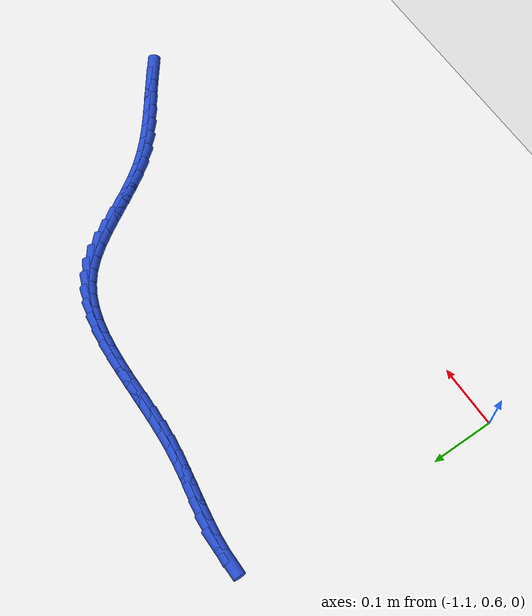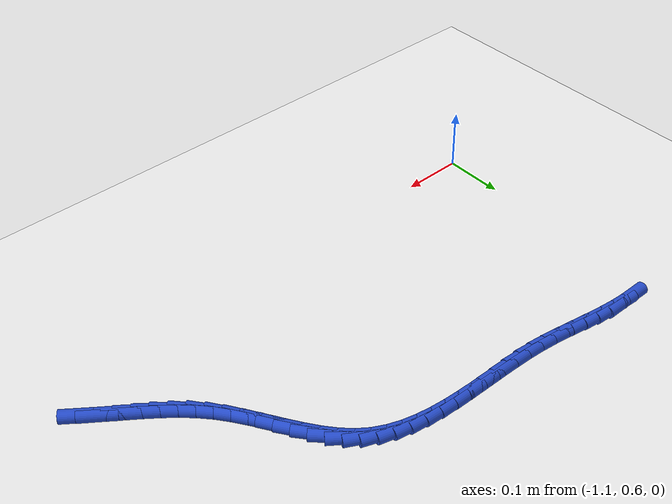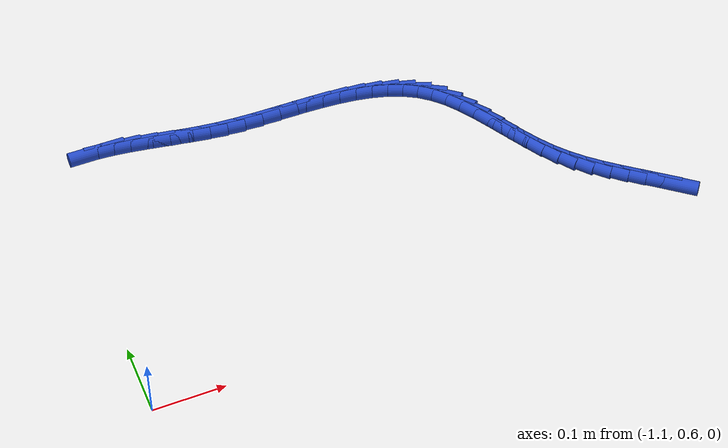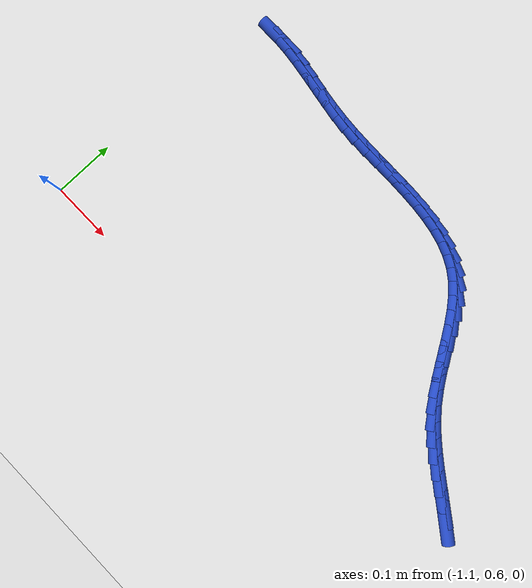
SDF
<sdf version="1.6">
 <world name="default">
  <model name="ground_plane">
   <static>1</static>
   <link name="link">
    <collision name="collision">
     <geometry><plane><normal>0 0 1</normal><size>100 100</size></plane></geometry>
     <surface><friction><ode><mu>100</mu><mu2>50</mu2></ode></friction></surface>
    </collision>
    <visual name="visual">
     <cast_shadows>0</cast_shadows>
     <geometry><plane><normal>0 0 1</normal><size>100 100</size></plane></geometry>
     <material>
      <script><uri>file://media/materials/scripts/gazebo.material</uri><name>Gazebo/WhiteGlow</name></script>
     </material>
    </visual>
   </link>
  </model>
  <model name="line">
   <link name="link_33">
    <pose>-0.33373359396966285 0.6815802135897588 0.01 0 1.57 -0.6499025332240669</pose>
    <collision name="collision">
     <geometry><cylinder><radius>0.01</radius><length>0.08</length></cylinder></geometry>
    </collision>
    <visual name="visual">
     <material>
      <script><name>Gazebo/Blue</name><uri>file://media/materials/scripts/gazebo.material</uri></script>
     </material>
     <geometry><cylinder><radius>0.01</radius><length>0.08</length></cylinder></geometry>
    </visual>
   </link>
   <link name="link_34">
    <pose>-0.352499605631969 0.6958433323258728 0.01 0 1.57 -0.6362783941563067</pose>
    <collision name="collision">
     <geometry><cylinder><radius>0.01</radius><length>0.08</length></cylinder></geometry>
    </collision>
    <visual name="visual">
     <material>
      <script><name>Gazebo/Blue</name><uri>file://media/materials/scripts/gazebo.material</uri></script>
     </material>
     <geometry><cylinder><radius>0.01</radius><length>0.08</length></cylinder></geometry>
    </visual>
   </link>
   <link name="link_35">
    <pose>-0.37156623640894804 0.709929284742732 0.01 0 1.57 -0.6409452636583325</pose>
    <collision name="collision">
     <geometry><cylinder><radius>0.01</radius><length>0.08</length></cylinder></geometry>
    </collision>
    <visual name="visual">
     <material>
      <script><name>Gazebo/Blue</name><uri>file://media/materials/scripts/gazebo.material</uri></script>
     </material>
     <geometry><cylinder><radius>0.01</radius><length>0.08</length></cylinder></geometry>
    </visual>
   </link>
   <link name="link_36">
    <pose>-0.39063209073391125 0.7241526813506937 0.01 0 1.57 -0.6637430228627839</pose>
    <collision name="collision">
     <geometry><cylinder><radius>0.01</radius><length>0.08</length></cylinder></geometry>
    </collision>
    <visual name="visual">
     <material>
      <script><name>Gazebo/Blue</name><uri>file://media/materials/scripts/gazebo.material</uri></script>
     </material>
     <geometry><cylinder><radius>0.01</radius><length>0.08</length></cylinder></geometry>
    </visual>
   </link>
   <link name="link_37">
    <pose>-0.409395773040171 0.7388281326601155 0.01 0 1.57 -0.7046864514127695</pose>
    <collision name="collision">
     <geometry><cylinder><radius>0.01</radius><length>0.08</length></cylinder></geometry>
    </collision>
    <visual name="visual">
     <material>
      <script><name>Gazebo/Blue</name><uri>file://media/materials/scripts/gazebo.material</uri></script>
     </material>
     <geometry><cylinder><radius>0.01</radius><length>0.08</length></cylinder></geometry>
    </visual>
   </link>
   <link name="link_38">
    <pose>-0.42755588776103853 0.7542702491813543 0.01 0 1.57 -0.7637381152608196</pose>
    <collision name="collision">
     <geometry><cylinder><radius>0.01</radius><length>0.08</length></cylinder></geometry>
    </collision>
    <visual name="visual">
     <material>
      <script><name>Gazebo/Blue</name><uri>file://media/materials/scripts/gazebo.material</uri></script>
     </material>
     <geometry><cylinder><radius>0.01</radius><length>0.08</length></cylinder></geometry>
    </visual>
   </link>
   <link name="link_39">
    <pose>-0.4448110393298259 0.7707936414247677 0.01 0 1.57 -0.8403531457350524</pose>
    <collision name="collision">
     <geometry><cylinder><radius>0.01</radius><length>0.08</length></cylinder></geometry>
    </collision>
    <visual name="visual">
     <material>
      <script><name>Gazebo/Blue</name><uri>file://media/materials/scripts/gazebo.material</uri></script>
     </material>
     <geometry><cylinder><radius>0.01</radius><length>0.08</length></cylinder></geometry>
    </visual>
   </link>
   <link name="link_40">
    <pose>-0.4608606806496912 0.788711867764181 0.01 0 1.57 -0.9210708584065361</pose>
    <collision name="collision">
     <geometry><cylinder><radius>0.01</radius><length>0.08</length></cylinder></geometry>
    </collision>
    <visual name="visual">
     <material>
      <script><name>Gazebo/Blue</name><uri>file://media/materials/scripts/gazebo.material</uri></script>
     </material>
     <geometry><cylinder><radius>0.01</radius><length>0.08</length></cylinder></geometry>
    </visual>
   </link>
   <link name="link_41">
    <pose>-0.4755938269041832 0.8081034217669522 0.01 0 1.57 -0.9785706430964333</pose>
    <collision name="collision">
     <geometry><cylinder><radius>0.01</radius><length>0.08</length></cylinder></geometry>
    </collision>
    <visual name="visual">
     <material>
      <script><name>Gazebo/Blue</name><uri>file://media/materials/scripts/gazebo.material</uri></script>
     </material>
     <geometry><cylinder><radius>0.01</radius><length>0.08</length></cylinder></geometry>
    </visual>
   </link>
   <link name="link_42">
    <pose>-0.4893272907601324 0.8285163110176358 0.01 0 1.57 -1.010795277397516</pose>
    <collision name="collision">
     <geometry><cylinder><radius>0.01</radius><length>0.08</length></cylinder></geometry>
    </collision>
    <visual name="visual">
     <material>
      <script><name>Gazebo/Blue</name><uri>file://media/materials/scripts/gazebo.material</uri></script>
     </material>
     <geometry><cylinder><radius>0.01</radius><length>0.08</length></cylinder></geometry>
    </visual>
   </link>
   <link name="link_43">
    <pose>-0.5024365293088742 0.8494258216697721 0.01 0 1.57 -1.0187813296468595</pose>
    <collision name="collision">
     <geometry><cylinder><radius>0.01</radius><length>0.08</length></cylinder></geometry>
    </collision>
    <visual name="visual">
     <material>
      <script><name>Gazebo/Blue</name><uri>file://media/materials/scripts/gazebo.material</uri></script>
     </material>
     <geometry><cylinder><radius>0.01</radius><length>0.08</length></cylinder></geometry>
    </visual>
   </link>
   <link name="link_44">
    <pose>-0.515296999641744 0.8703072398769003 0.01 0 1.57 -1.0022915188749977</pose>
    <collision name="collision">
     <geometry><cylinder><radius>0.01</radius><length>0.08</length></cylinder></geometry>
    </collision>
    <visual name="visual">
     <material>
      <script><name>Gazebo/Blue</name><uri>file://media/materials/scripts/gazebo.material</uri></script>
     </material>
     <geometry><cylinder><radius>0.01</radius><length>0.08</length></cylinder></geometry>
    </visual>
   </link>
   <link name="link_45">
    <pose>-0.528284158850077 0.8906358517925593 0.01 0 1.57 -0.9595984478614437</pose>
    <collision name="collision">
     <geometry><cylinder><radius>0.01</radius><length>0.08</length></cylinder></geometry>
    </collision>
    <visual name="visual">
     <material>
      <script><name>Gazebo/Blue</name><uri>file://media/materials/scripts/gazebo.material</uri></script>
     </material>
     <geometry><cylinder><radius>0.01</radius><length>0.08</length></cylinder></geometry>
    </visual>
   </link>
   <link name="link_46">
    <pose>-0.5417734640252088 0.9098869435702899 0.01 0 1.57 -0.8875517555663721</pose>
    <collision name="collision">
     <geometry><cylinder><radius>0.01</radius><length>0.08</length></cylinder></geometry>
    </collision>
    <visual name="visual">
     <material>
      <script><name>Gazebo/Blue</name><uri>file://media/materials/scripts/gazebo.material</uri></script>
     </material>
     <geometry><cylinder><radius>0.01</radius><length>0.08</length></cylinder></geometry>
    </visual>
   </link>
   <link name="link_47">
    <pose>-0.5561403722584743 0.9275358013636301 0.01 0 1.57 -0.782249409970126</pose>
    <collision name="collision">
     <geometry><cylinder><radius>0.01</radius><length>0.08</length></cylinder></geometry>
    </collision>
    <visual name="visual">
     <material>
      <script><name>Gazebo/Blue</name><uri>file://media/materials/scripts/gazebo.material</uri></script>
     </material>
     <geometry><cylinder><radius>0.01</radius><length>0.08</length></cylinder></geometry>
    </visual>
   </link>
   <link name="link_48">
    <pose>-0.5717603406412095 0.9430577113261207 0.01 0 1.57 -0.6427934618571559</pose>
    <collision name="collision">
     <geometry><cylinder><radius>0.01</radius><length>0.08</length></cylinder></geometry>
    </collision>
    <visual name="visual">
     <material>
      <script><name>Gazebo/Blue</name><uri>file://media/materials/scripts/gazebo.material</uri></script>
     </material>
     <geometry><cylinder><radius>0.01</radius><length>0.08</length></cylinder></geometry>
    </visual>
   </link>
   <link name="link_49">
    <pose>-0.5889879605136304 0.9559593877809783 0.01 0 1.57 -0.4970556582952676</pose>
    <collision name="collision">
     <geometry><cylinder><radius>0.01</radius><length>0.08</length></cylinder></geometry>
    </collision>
    <visual name="visual">
     <material>
      <script><name>Gazebo/Blue</name><uri>file://media/materials/scripts/gazebo.material</uri></script>
     </material>
     <geometry><cylinder><radius>0.01</radius><length>0.08</length></cylinder></geometry>
    </visual>
   </link>
   <link name="link_50">
    <pose>-0.6078741829763895 0.9662048905318597 0.01 0 1.57 -0.36998339307384254</pose>
    <collision name="collision">
     <geometry><cylinder><radius>0.01</radius><length>0.08</length></cylinder></geometry>
    </collision>
    <visual name="visual">
     <material>
      <script><name>Gazebo/Blue</name><uri>file://media/materials/scripts/gazebo.material</uri></script>
     </material>
     <geometry><cylinder><radius>0.01</radius><length>0.08</length></cylinder></geometry>
    </visual>
   </link>
   <link name="link_51">
    <pose>-0.6282405248722442 0.9741038551896851 0.01 0 1.57 -0.26464778107757725</pose>
    <collision name="collision">
     <geometry><cylinder><radius>0.01</radius><length>0.08</length></cylinder></geometry>
    </collision>
    <visual name="visual">
     <material>
      <script><name>Gazebo/Blue</name><uri>file://media/materials/scripts/gazebo.material</uri></script>
     </material>
     <geometry><cylinder><radius>0.01</radius><length>0.08</length></cylinder></geometry>
    </visual>
   </link>
   <link name="link_52">
    <pose>-0.6499028447881126 0.9799744398778726 0.01 0 1.57 -0.18068676020941668</pose>
    <collision name="collision">
     <geometry><cylinder><radius>0.01</radius><length>0.08</length></cylinder></geometry>
    </collision>
    <visual name="visual">
     <material>
      <script><name>Gazebo/Blue</name><uri>file://media/materials/scripts/gazebo.material</uri></script>
     </material>
     <geometry><cylinder><radius>0.01</radius><length>0.08</length></cylinder></geometry>
    </visual>
   </link>
   <link name="link_53">
    <pose>-0.672677001310911 0.9841348027198382 0.01 0 1.57 -0.11626995606380869</pose>
    <collision name="collision">
     <geometry><cylinder><radius>0.01</radius><length>0.08</length></cylinder></geometry>
    </collision>
    <visual name="visual">
     <material>
      <script><name>Gazebo/Blue</name><uri>file://media/materials/scripts/gazebo.material</uri></script>
     </material>
     <geometry><cylinder><radius>0.01</radius><length>0.08</length></cylinder></geometry>
    </visual>
   </link>
   <link name="link_54">
    <pose>-0.6963788530275564 0.986903101838999 0.01 0 1.57 -0.06920269054851788</pose>
    <collision name="collision">
     <geometry><cylinder><radius>0.01</radius><length>0.08</length></cylinder></geometry>
    </collision>
    <visual name="visual">
     <material>
      <script><name>Gazebo/Blue</name><uri>file://media/materials/scripts/gazebo.material</uri></script>
     </material>
     <geometry><cylinder><radius>0.01</radius><length>0.08</length></cylinder></geometry>
    </visual>
   </link>
   <link name="link_55">
    <pose>-0.7208242585249671 0.9885974953587728 0.01 0 1.57 -0.03752098993456947</pose>
    <collision name="collision">
     <geometry><cylinder><radius>0.01</radius><length>0.08</length></cylinder></geometry>
    </collision>
    <visual name="visual">
     <material>
      <script><name>Gazebo/Blue</name><uri>file://media/materials/scripts/gazebo.material</uri></script>
     </material>
     <geometry><cylinder><radius>0.01</radius><length>0.08</length></cylinder></geometry>
    </visual>
   </link>
   <link name="link_56">
    <pose>-0.745829076390059 0.9895361414025756 0.01 0 1.57 -0.01973955308873256</pose>
    <collision name="collision">
     <geometry><cylinder><radius>0.01</radius><length>0.08</length></cylinder></geometry>
    </collision>
    <visual name="visual">
     <material>
      <script><name>Gazebo/Blue</name><uri>file://media/materials/scripts/gazebo.material</uri></script>
     </material>
     <geometry><cylinder><radius>0.01</radius><length>0.08</length></cylinder></geometry>
    </visual>
   </link>
   <link name="link_57">
    <pose>-0.77120916520975 0.9900371980938252 0.01 0 1.57 -0.014922915592456776</pose>
    <collision name="collision">
     <geometry><cylinder><radius>0.01</radius><length>0.08</length></cylinder></geometry>
    </collision>
    <visual name="visual">
     <material>
      <script><name>Gazebo/Blue</name><uri>file://media/materials/scripts/gazebo.material</uri></script>
     </material>
     <geometry><cylinder><radius>0.01</radius><length>0.08</length></cylinder></geometry>
    </visual>
   </link>
   <link name="link_58">
    <pose>-0.7967803835709568 0.9904188235559381 0.01 0 1.57 -0.0226854372223595</pose>
    <collision name="collision">
     <geometry><cylinder><radius>0.01</radius><length>0.08</length></cylinder></geometry>
    </collision>
    <visual name="visual">
     <material>
      <script><name>Gazebo/Blue</name><uri>file://media/materials/scripts/gazebo.material</uri></script>
     </material>
     <geometry><cylinder><radius>0.01</radius><length>0.08</length></cylinder></geometry>
    </visual>
   </link>
   <link name="link_59">
    <pose>-0.8223585900605968 0.9909991759123314 0.01 0 1.57 -0.04316969333847644</pose>
    <collision name="collision">
     <geometry><cylinder><radius>0.01</radius><length>0.08</length></cylinder></geometry>
    </collision>
    <visual name="visual">
     <material>
      <script><name>Gazebo/Blue</name><uri>file://media/materials/scripts/gazebo.material</uri></script>
     </material>
     <geometry><cylinder><radius>0.01</radius><length>0.08</length></cylinder></geometry>
    </visual>
   </link>
   <link name="link_60">
    <pose>-0.8477596432655872 0.9920964132864226 0.01 0 1.57 -0.07701586255813168</pose>
    <collision name="collision">
     <geometry><cylinder><radius>0.01</radius><length>0.08</length></cylinder></geometry>
    </collision>
    <visual name="visual">
     <material>
      <script><name>Gazebo/Blue</name><uri>file://media/materials/scripts/gazebo.material</uri></script>
     </material>
     <geometry><cylinder><radius>0.01</radius><length>0.08</length></cylinder></geometry>
    </visual>
   </link>
   <link name="link_61">
    <pose>-0.8727994017728447 0.994028693801628 0.01 0 1.57 -0.12044059929523064</pose>
    <collision name="collision">
     <geometry><cylinder><radius>0.01</radius><length>0.08</length></cylinder></geometry>
    </collision>
    <visual name="visual">
     <material>
      <script><name>Gazebo/Blue</name><uri>file://media/materials/scripts/gazebo.material</uri></script>
     </material>
     <geometry><cylinder><radius>0.01</radius><length>0.08</length></cylinder></geometry>
    </visual>
   </link>
   <link name="link_62">
    <pose>-0.897335885524138 0.9969982552724129 0.01 0 1.57 -0.154080676624755</pose>
    <collision name="collision">
     <geometry><cylinder><radius>0.01</radius><length>0.08</length></cylinder></geometry>
    </collision>
    <visual name="visual">
     <material>
      <script><name>Gazebo/Blue</name><uri>file://media/materials/scripts/gazebo.material</uri></script>
     </material>
     <geometry><cylinder><radius>0.01</radius><length>0.08</length></cylinder></geometry>
    </visual>
   </link>
   <link name="link_63">
    <pose>-0.9213987270569008 1.000735496190726 0.01 0 1.57 -0.1721936093367742</pose>
    <collision name="collision">
     <geometry><cylinder><radius>0.01</radius><length>0.08</length></cylinder></geometry>
    </collision>
    <visual name="visual">
     <material>
      <script><name>Gazebo/Blue</name><uri>file://media/materials/scripts/gazebo.material</uri></script>
     </material>
     <geometry><cylinder><radius>0.01</radius><length>0.08</length></cylinder></geometry>
    </visual>
   </link>
   <link name="link_64">
    <pose>-0.9450612168562458 1.0048507799405098 0.01 0 1.57 -0.17407672545674363</pose>
    <collision name="collision">
     <geometry><cylinder><radius>0.01</radius><length>0.08</length></cylinder></geometry>
    </collision>
    <visual name="visual">
     <material>
      <script><name>Gazebo/Blue</name><uri>file://media/materials/scripts/gazebo.material</uri></script>
     </material>
     <geometry><cylinder><radius>0.01</radius><length>0.08</length></cylinder></geometry>
    </visual>
   </link>
   <link name="link_65">
    <pose>-0.9683966454157164 1.0089544698825281 0.01 0 1.57 -0.15905207827372897</pose>
    <collision name="collision">
     <geometry><cylinder><radius>0.01</radius><length>0.08</length></cylinder></geometry>
    </collision>
    <visual name="visual">
     <material>
      <script><name>Gazebo/Blue</name><uri>file://media/materials/scripts/gazebo.material</uri></script>
     </material>
     <geometry><cylinder><radius>0.01</radius><length>0.08</length></cylinder></geometry>
    </visual>
   </link>
   <link name="link_66">
    <pose>-0.9914783032288562 1.0126569293775445 0.01 0 1.57 -0.12645879317815586</pose>
    <collision name="collision">
     <geometry><cylinder><radius>0.01</radius><length>0.08</length></cylinder></geometry>
    </collision>
    <visual name="visual">
     <material>
      <script><name>Gazebo/Blue</name><uri>file://media/materials/scripts/gazebo.material</uri></script>
     </material>
     <geometry><cylinder><radius>0.01</radius><length>0.08</length></cylinder></geometry>
    </visual>
   </link>
   <link name="link_67">
    <pose>-1.014379480789208 1.0155685217863228 0.01 0 1.57 -0.07579946390025402</pose>
    <collision name="collision">
     <geometry><cylinder><radius>0.01</radius><length>0.08</length></cylinder></geometry>
    </collision>
    <visual name="visual">
     <material>
      <script><name>Gazebo/Blue</name><uri>file://media/materials/scripts/gazebo.material</uri></script>
     </material>
     <geometry><cylinder><radius>0.01</radius><length>0.08</length></cylinder></geometry>
    </visual>
   </link>
   <link name="link_68">
    <pose>-1.0371734685903164 1.0172996104696272 0.01 0 1.57 -0.007576227799453368</pose>
    <collision name="collision">
     <geometry><cylinder><radius>0.01</radius><length>0.08</length></cylinder></geometry>
    </collision>
    <visual name="visual">
     <material>
      <script><name>Gazebo/Blue</name><uri>file://media/materials/scripts/gazebo.material</uri></script>
     </material>
     <geometry><cylinder><radius>0.01</radius><length>0.08</length></cylinder></geometry>
    </visual>
   </link>
  </model>
 </world>
</sdf>
